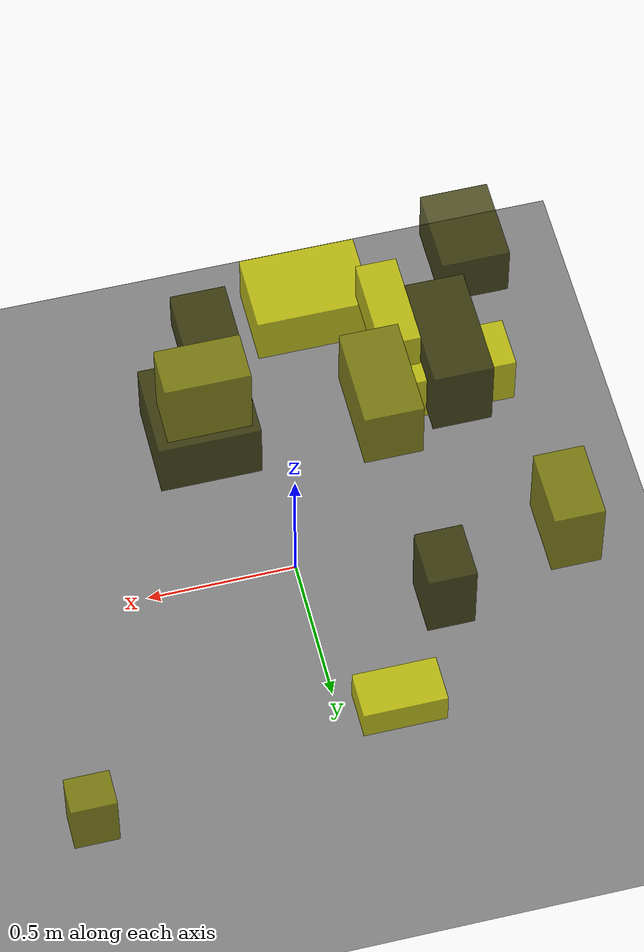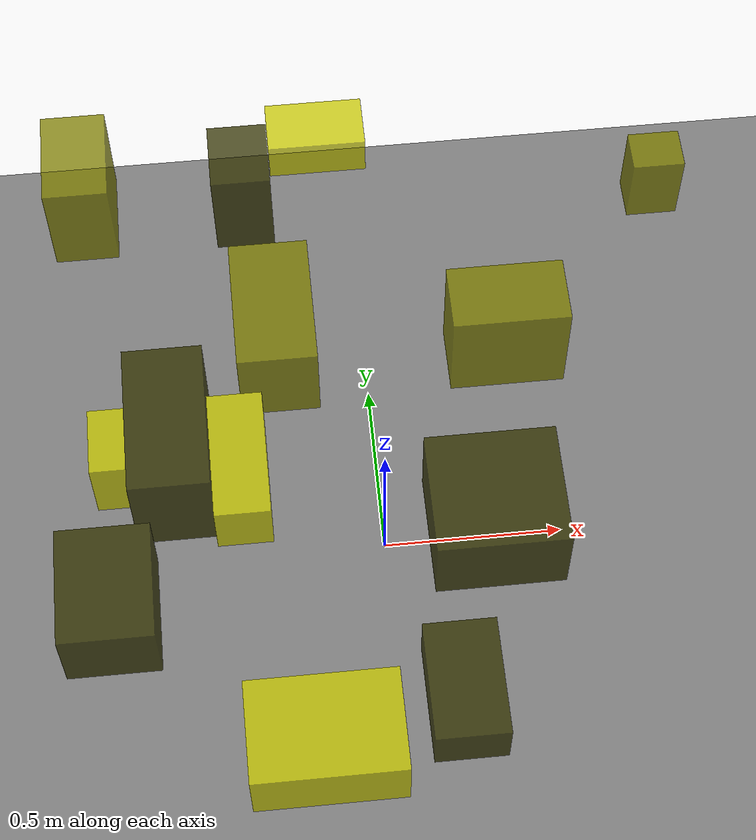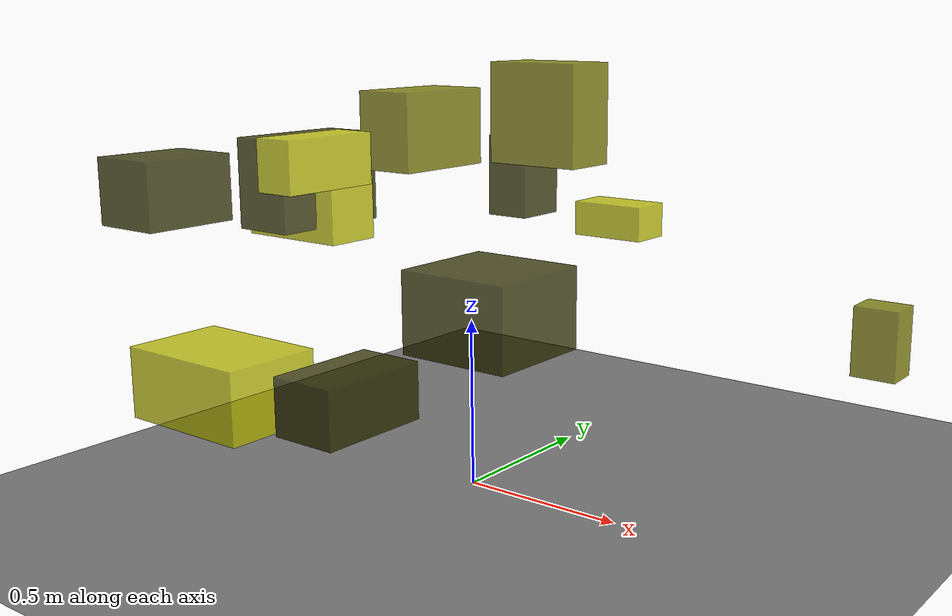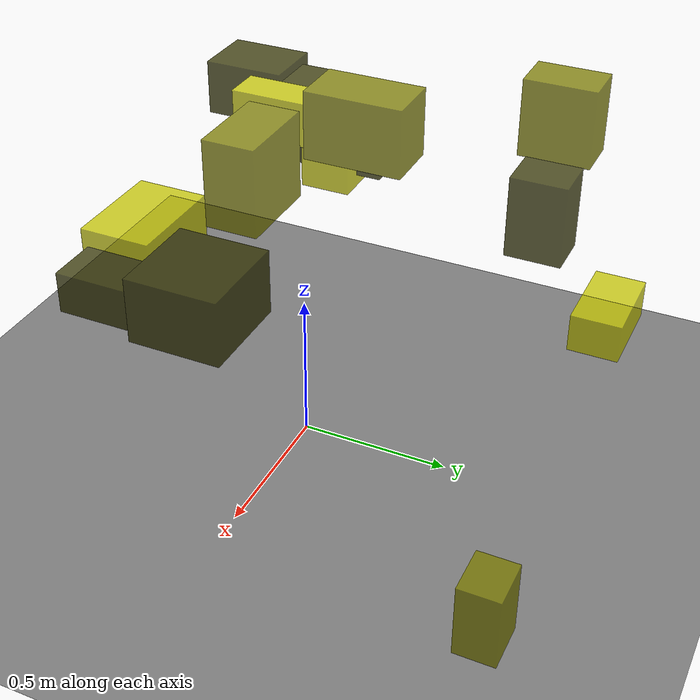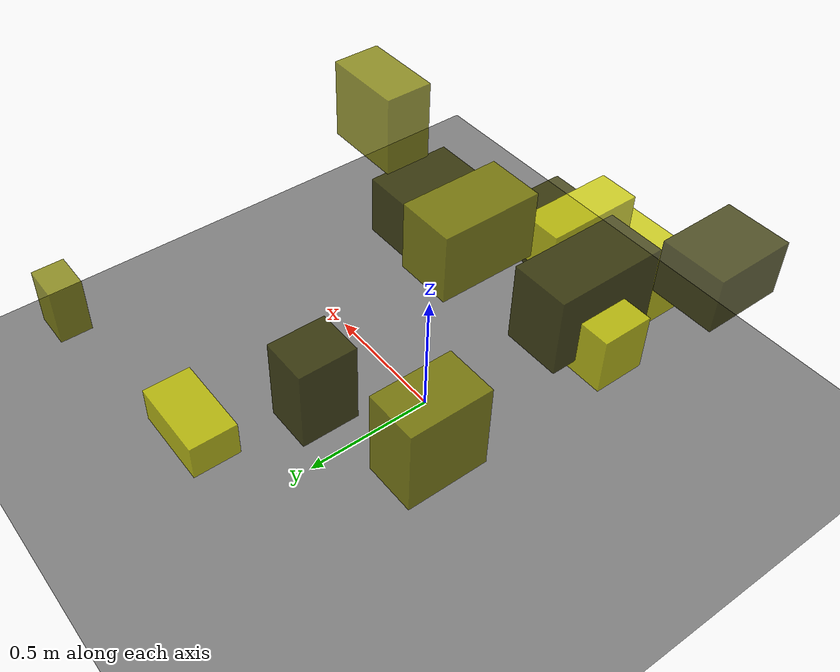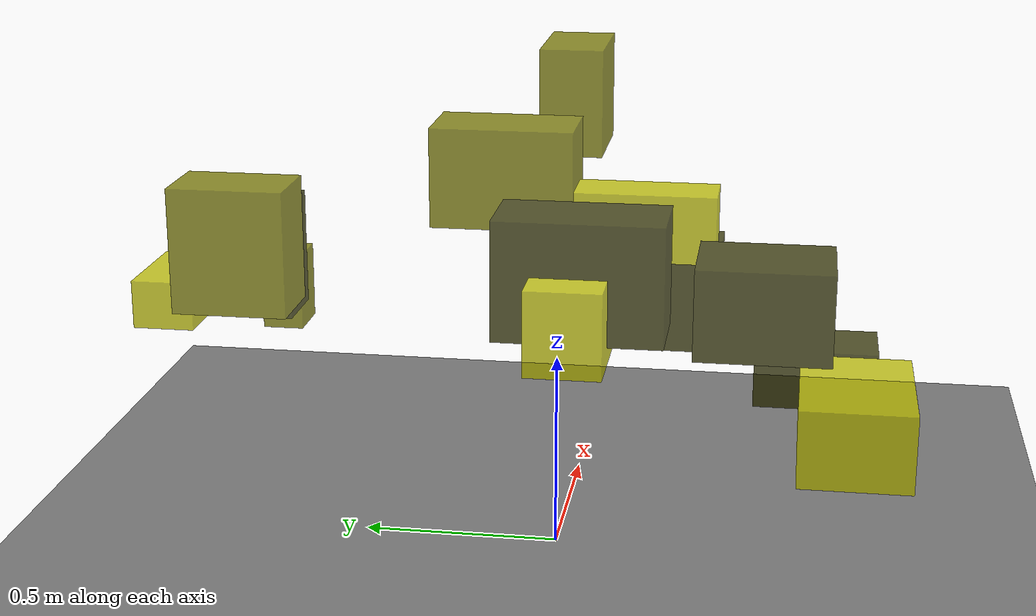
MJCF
<?xml version="1.0"?>
<mujoco model="obstacle_scene">
  <compiler angle="radian" coordinate="local"/>
  <option timestep="0.001" gravity="0 0 -9.81"/>

  <asset>
    <material name="obstacle_mat" rgba="0.8 0.8 0.0 0.8"/>
    <material name="ground_mat" rgba="0.5 0.5 0.5 1"/>
  </asset>

  <worldbody>
    <!-- Ground plane -->
    <geom name="ground" type="plane" size="3 3 0.1" material="ground_mat"/>

    <!-- Obstacles -->
    <body name="obstacle_0" pos="0.254960 -0.233601 0.616460">
      <geom name="obs_0" type="box" size="0.166037 0.158638 0.113730" rgba="0.2 0.2 0.0 0.8"/>
    </body>
    <body name="obstacle_1" pos="-0.718123 0.593156 0.975770">
      <geom name="obs_1" type="box" size="0.079455 0.123525 0.135710" rgba="0.5 0.5 0.0 0.8"/>
    </body>
    <body name="obstacle_2" pos="-0.546787 -0.104095 0.806010">
      <geom name="obs_2" type="box" size="0.179680 0.084764 0.095953" rgba="0.8 0.8 0.0 0.8"/>
    </body>
    <body name="obstacle_3" pos="-0.531938 -0.122769 0.887292">
      <geom name="obs_3" type="box" size="0.095931 0.187688 0.135107" rgba="0.2 0.2 0.0 0.8"/>
    </body>
    <body name="obstacle_4" pos="-0.258400 0.085525 1.041559">
      <geom name="obs_4" type="box" size="0.093841 0.164300 0.115298" rgba="0.5 0.5 0.0 0.8"/>
    </body>
    <body name="obstacle_5" pos="-0.217485 -0.737672 0.453335">
      <geom name="obs_5" type="box" size="0.193427 0.133456 0.094656" rgba="0.8 0.8 0.0 0.8"/>
    </body>
    <body name="obstacle_6" pos="-0.313711 0.664551 0.838136">
      <geom name="obs_6" type="box" size="0.075730 0.091477 0.135757" rgba="0.2 0.2 0.0 0.8"/>
    </body>
    <body name="obstacle_7" pos="0.282511 -0.011445 1.118727">
      <geom name="obs_7" type="box" size="0.135036 0.079218 0.134458" rgba="0.5 0.5 0.0 0.8"/>
    </body>
    <body name="obstacle_8" pos="-0.366908 -0.248413 0.964157">
      <geom name="obs_8" type="box" size="0.065276 0.158372 0.076470" rgba="0.8 0.8 0.0 0.8"/>
    </body>
    <body name="obstacle_9" pos="0.136105 -0.643463 0.456874">
      <geom name="obs_9" type="box" size="0.093070 0.153019 0.075189" rgba="0.2 0.2 0.0 0.8"/>
    </body>
    <body name="obstacle_10" pos="0.876065 0.941411 0.379102">
      <geom name="obs_10" type="box" size="0.072627 0.059995 0.112854" rgba="0.5 0.5 0.0 0.8"/>
    </body>
    <body name="obstacle_11" pos="-0.101821 0.942971 0.666404">
      <geom name="obs_11" type="box" size="0.132460 0.075591 0.059268" rgba="0.8 0.8 0.0 0.8"/>
    </body>
    <body name="obstacle_12" pos="-0.691281 -0.522353 0.888777">
      <geom name="obs_12" type="box" size="0.110211 0.141596 0.097193" rgba="0.2 0.2 0.0 0.8"/>
    </body>
  </worldbody>
</mujoco>
